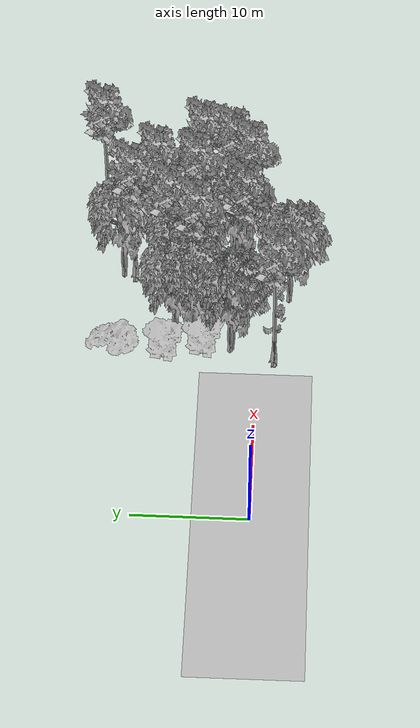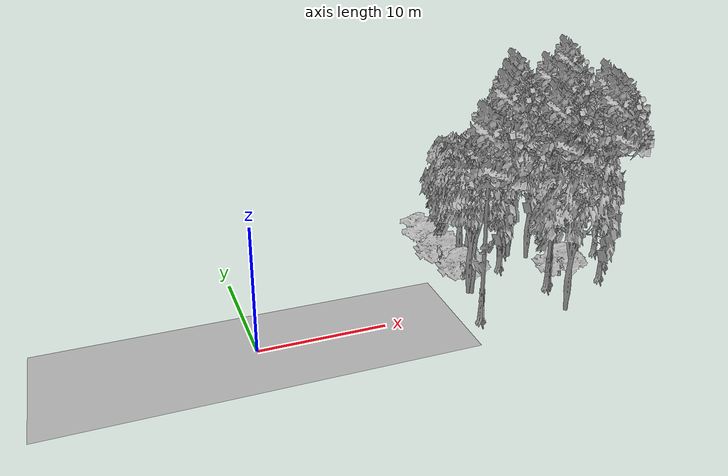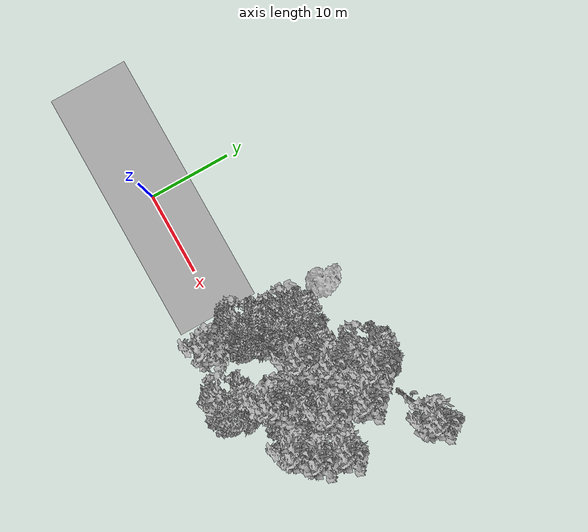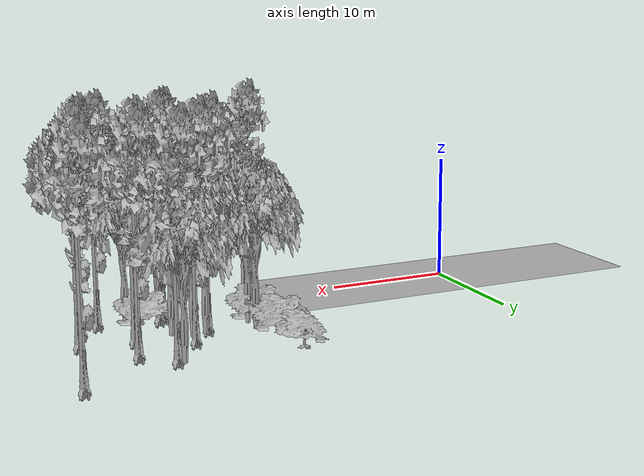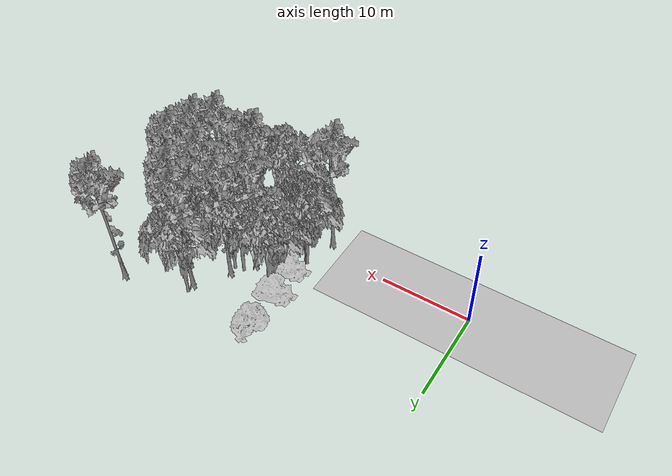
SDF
<sdf version="1.7">
 <world name="default">
  <model name="ground_plane">
   <static>1</static>
   <link name="link">
    <collision name="collision">
     <pose>-50 0 0 0 -0 0</pose>
     <geometry><plane><normal>0 0 1</normal><size>100 100</size></plane></geometry>
     <surface><contact><ode><min_depth>0.01</min_depth><max_vel>0</max_vel></ode></contact></surface>
    </collision>
    <visual name="grass">
     <cast_shadows>0</cast_shadows>
     <geometry>
      <mesh>
       <scale>0.5814285714285714 0.18142857142857144 0.1</scale>
       <uri>file://grass_plane/meshes/grass_plane.dae</uri>
      </mesh>
     </geometry>
    </visual>
   </link>
  </model>
  <model name="Tree 22">
   <static>1</static>
   <pose>24.124767231465142 -2.712410142354857 0 1.57079 -0 0</pose>
   <link name="link">
    <collision name="collision">
     <geometry><mesh><scale>3.5 5 3.5</scale><uri>model://tree_2/meshes/tree_2.obj</uri></mesh></geometry>
    </collision>
    <visual name="visual">
     <geometry><mesh><scale>3.5 5 3.5</scale><uri>model://tree_2/meshes/tree_2.obj</uri></mesh></geometry>
    </visual>
   </link>
  </model>
  <model name="Tree 31">
   <static>1</static>
   <pose>25.302204731030642 1.6287127306009737 0 1.57079 -0 0</pose>
   <link name="link">
    <collision name="collision">
     <geometry><mesh><scale>3.5 5 3.5</scale><uri>model://tree_9/meshes/tree_9.obj</uri></mesh></geometry>
    </collision>
    <visual name="visual">
     <geometry><mesh><scale>3.5 5 3.5</scale><uri>model://tree_9/meshes/tree_9.obj</uri></mesh></geometry>
    </visual>
   </link>
  </model>
  <model name="Tree 40">
   <static>1</static>
   <pose>24.41098998959231 7.710292765850685 0 1.57079 -0 0</pose>
   <link name="link">
    <collision name="collision">
     <geometry><mesh><scale>3.5 5 3.5</scale><uri>model://tree_9/meshes/tree_9.obj</uri></mesh></geometry>
    </collision>
    <visual name="visual">
     <geometry><mesh><scale>3.5 5 3.5</scale><uri>model://tree_9/meshes/tree_9.obj</uri></mesh></geometry>
    </visual>
   </link>
  </model>
  <model name="Tree 86">
   <static>1</static>
   <pose>18.070330755792952 12.436816149634172 0 1.57079 -0 0</pose>
   <link name="link">
    <collision name="collision">
     <geometry><mesh><scale>4 2.5 4</scale><uri>model://tree_1/meshes/tree_1.obj</uri></mesh></geometry>
    </collision>
    <visual name="visual">
     <geometry><mesh><scale>4 2.5 4</scale><uri>model://tree_1/meshes/tree_1.obj</uri></mesh></geometry>
    </visual>
   </link>
  </model>
  <model name="Tree 90">
   <static>1</static>
   <pose>23.28137012521441 6.695949290518087 0 1.57079 -0 0</pose>
   <link name="link">
    <collision name="collision">
     <geometry><mesh><scale>3.5 5 3.5</scale><uri>model://tree_2/meshes/tree_2.obj</uri></mesh></geometry>
    </collision>
    <visual name="visual">
     <geometry><mesh><scale>3.5 5 3.5</scale><uri>model://tree_2/meshes/tree_2.obj</uri></mesh></geometry>
    </visual>
   </link>
  </model>
  <model name="Tree 99">
   <static>1</static>
   <pose>28.303439166068486 5.708330517660507 0 1.57079 -0 0</pose>
   <link name="link">
    <collision name="collision">
     <geometry><mesh><scale>3.5 5 3.5</scale><uri>model://tree_9/meshes/tree_9.obj</uri></mesh></geometry>
    </collision>
    <visual name="visual">
     <geometry><mesh><scale>3.5 5 3.5</scale><uri>model://tree_9/meshes/tree_9.obj</uri></mesh></geometry>
    </visual>
   </link>
  </model>
  <model name="Tree 107">
   <static>1</static>
   <pose>24.87288250637603 1.1864837654046028 0 1.57079 -0 0</pose>
   <link name="link">
    <collision name="collision">
     <geometry><mesh><scale>3.5 5 3.5</scale><uri>model://tree_9/meshes/tree_9.obj</uri></mesh></geometry>
    </collision>
    <visual name="visual">
     <geometry><mesh><scale>3.5 5 3.5</scale><uri>model://tree_9/meshes/tree_9.obj</uri></mesh></geometry>
    </visual>
   </link>
  </model>
  <model name="Tree 109">
   <static>1</static>
   <pose>25.61074159423798 6.030777838290579 0 1.57079 -0 0</pose>
   <link name="link">
    <collision name="collision">
     <geometry><mesh><scale>3.5 5 3.5</scale><uri>model://tree_2/meshes/tree_2.obj</uri></mesh></geometry>
    </collision>
    <visual name="visual">
     <geometry><mesh><scale>3.5 5 3.5</scale><uri>model://tree_2/meshes/tree_2.obj</uri></mesh></geometry>
    </visual>
   </link>
  </model>
  <model name="Tree 126">
   <static>1</static>
   <pose>24.295262576106452 6.907972199948176 0 1.57079 -0 0</pose>
   <link name="link">
    <collision name="collision">
     <geometry><mesh><scale>3.5 5 3.5</scale><uri>model://tree_2/meshes/tree_2.obj</uri></mesh></geometry>
    </collision>
    <visual name="visual">
     <geometry><mesh><scale>3.5 5 3.5</scale><uri>model://tree_2/meshes/tree_2.obj</uri></mesh></geometry>
    </visual>
   </link>
  </model>
  <model name="Tree 127">
   <static>1</static>
   <pose>22.732095058991206 5.4433462175345255 0 1.57079 -0 0</pose>
   <link name="link">
    <collision name="collision">
     <geometry><mesh><scale>3.5 5 3.5</scale><uri>model://tree_9/meshes/tree_9.obj</uri></mesh></geometry>
    </collision>
    <visual name="visual">
     <geometry><mesh><scale>3.5 5 3.5</scale><uri>model://tree_9/meshes/tree_9.obj</uri></mesh></geometry>
    </visual>
   </link>
  </model>
  <model name="Tree 137">
   <static>1</static>
   <pose>26.516950198048235 12.065765075790157 0 1.57079 -0 0</pose>
   <link name="link">
    <collision name="collision">
     <geometry><mesh><scale>3.5 5 3.5</scale><uri>model://tree_2/meshes/tree_2.obj</uri></mesh></geometry>
    </collision>
    <visual name="visual">
     <geometry><mesh><scale>3.5 5 3.5</scale><uri>model://tree_2/meshes/tree_2.obj</uri></mesh></geometry>
    </visual>
   </link>
  </model>
  <model name="Tree 139">
   <static>1</static>
   <pose>28.923988247250605 9.044644478138718 0 1.57079 -0 0</pose>
   <link name="link">
    <collision name="collision">
     <geometry><mesh><scale>3.5 5 3.5</scale><uri>model://tree_9/meshes/tree_9.obj</uri></mesh></geometry>
    </collision>
    <visual name="visual">
     <geometry><mesh><scale>3.5 5 3.5</scale><uri>model://tree_9/meshes/tree_9.obj</uri></mesh></geometry>
    </visual>
   </link>
  </model>
  <model name="Tree 140">
   <static>1</static>
   <pose>18.34283799432481 2.1671144841896357 0 1.57079 -0 0</pose>
   <link name="link">
    <collision name="collision">
     <geometry><mesh><scale>3.5 5 3.5</scale><uri>model://tree_2/meshes/tree_2.obj</uri></mesh></geometry>
    </collision>
    <visual name="visual">
     <geometry><mesh><scale>3.5 5 3.5</scale><uri>model://tree_2/meshes/tree_2.obj</uri></mesh></geometry>
    </visual>
   </link>
  </model>
  <model name="Tree 145">
   <static>1</static>
   <pose>29.844340285908928 0.9494762816269038 0 1.57079 -0 0</pose>
   <link name="link">
    <collision name="collision">
     <geometry><mesh><scale>3.5 5 3.5</scale><uri>model://tree_9/meshes/tree_9.obj</uri></mesh></geometry>
    </collision>
    <visual name="visual">
     <geometry><mesh><scale>3.5 5 3.5</scale><uri>model://tree_9/meshes/tree_9.obj</uri></mesh></geometry>
    </visual>
   </link>
  </model>
  <model name="Tree 146">
   <static>1</static>
   <pose>18.853500563795677 4.541644960342655 0 1.57079 -0 0</pose>
   <link name="link">
    <collision name="collision">
     <geometry><mesh><scale>3 2 3</scale><uri>model://tree_3/meshes/tree_3.obj</uri></mesh></geometry>
    </collision>
    <visual name="visual">
     <geometry><mesh><scale>3 2 3</scale><uri>model://tree_3/meshes/tree_3.obj</uri></mesh></geometry>
    </visual>
   </link>
  </model>
  <model name="Tree 154">
   <static>1</static>
   <pose>31.388281273544152 2.52520594038225 0 1.57079 -0 0</pose>
   <link name="link">
    <collision name="collision">
     <geometry><mesh><scale>3.5 5 3.5</scale><uri>model://tree_9/meshes/tree_9.obj</uri></mesh></geometry>
    </collision>
    <visual name="visual">
     <geometry><mesh><scale>3.5 5 3.5</scale><uri>model://tree_9/meshes/tree_9.obj</uri></mesh></geometry>
    </visual>
   </link>
  </model>
  <model name="Tree 155">
   <static>1</static>
   <pose>32.168289917775596 5.144744212525893 0 1.57079 -0 0</pose>
   <link name="link">
    <collision name="collision">
     <geometry><mesh><scale>3.5 5 3.5</scale><uri>model://tree_9/meshes/tree_9.obj</uri></mesh></geometry>
    </collision>
    <visual name="visual">
     <geometry><mesh><scale>3.5 5 3.5</scale><uri>model://tree_9/meshes/tree_9.obj</uri></mesh></geometry>
    </visual>
   </link>
  </model>
  <model name="Tree 163">
   <static>1</static>
   <pose>17.36079705153452 -1.5307296778393322 0 1.57079 -0 0</pose>
   <link name="link">
    <collision name="collision">
     <geometry><mesh><scale>3.5 5 3.5</scale><uri>model://tree_9/meshes/tree_9.obj</uri></mesh></geometry>
    </collision>
    <visual name="visual">
     <geometry><mesh><scale>3.5 5 3.5</scale><uri>model://tree_9/meshes/tree_9.obj</uri></mesh></geometry>
    </visual>
   </link>
  </model>
  <model name="Tree 181">
   <static>1</static>
   <pose>27.986455151013956 2.1907345275298162 0 1.57079 -0 0</pose>
   <link name="link">
    <collision name="collision">
     <geometry><mesh><scale>3.5 5 3.5</scale><uri>model://tree_2/meshes/tree_2.obj</uri></mesh></geometry>
    </collision>
    <visual name="visual">
     <geometry><mesh><scale>3.5 5 3.5</scale><uri>model://tree_2/meshes/tree_2.obj</uri></mesh></geometry>
    </visual>
   </link>
  </model>
  <model name="Tree 193">
   <static>1</static>
   <pose>18.092398054460944 2.30578993496502 0 1.57079 -0 0</pose>
   <link name="link">
    <collision name="collision">
     <geometry><mesh><scale>3.5 5 3.5</scale><uri>model://tree_2/meshes/tree_2.obj</uri></mesh></geometry>
    </collision>
    <visual name="visual">
     <geometry><mesh><scale>3.5 5 3.5</scale><uri>model://tree_2/meshes/tree_2.obj</uri></mesh></geometry>
    </visual>
   </link>
  </model>
  <model name="Tree 212">
   <static>1</static>
   <pose>26.78936162876711 11.09233417470034 0 1.57079 -0 0</pose>
   <link name="link">
    <collision name="collision">
     <geometry><mesh><scale>3.5 5 3.5</scale><uri>model://tree_9/meshes/tree_9.obj</uri></mesh></geometry>
    </collision>
    <visual name="visual">
     <geometry><mesh><scale>3.5 5 3.5</scale><uri>model://tree_9/meshes/tree_9.obj</uri></mesh></geometry>
    </visual>
   </link>
  </model>
  <model name="Tree 233">
   <static>1</static>
   <pose>26.851427633419533 2.3650688400502347 0 1.57079 -0 0</pose>
   <link name="link">
    <collision name="collision">
     <geometry><mesh><scale>3 2 3</scale><uri>model://tree_3/meshes/tree_3.obj</uri></mesh></geometry>
    </collision>
    <visual name="visual">
     <geometry><mesh><scale>3 2 3</scale><uri>model://tree_3/meshes/tree_3.obj</uri></mesh></geometry>
    </visual>
   </link>
  </model>
  <model name="Tree 243">
   <static>1</static>
   <pose>19.576084132768955 7.150280583680271 0 1.57079 -0 0</pose>
   <link name="link">
    <collision name="collision">
     <geometry><mesh><scale>3.5 5 3.5</scale><uri>model://tree_2/meshes/tree_2.obj</uri></mesh></geometry>
    </collision>
    <visual name="visual">
     <geometry><mesh><scale>3.5 5 3.5</scale><uri>model://tree_2/meshes/tree_2.obj</uri></mesh></geometry>
    </visual>
   </link>
  </model>
  <model name="Tree 286">
   <static>1</static>
   <pose>18.281828017485026 7.928351143857931 0 1.57079 -0 0</pose>
   <link name="link">
    <collision name="collision">
     <geometry><mesh><scale>3 2 3</scale><uri>model://tree_3/meshes/tree_3.obj</uri></mesh></geometry>
    </collision>
    <visual name="visual">
     <geometry><mesh><scale>3 2 3</scale><uri>model://tree_3/meshes/tree_3.obj</uri></mesh></geometry>
    </visual>
   </link>
  </model>
  <model name="Tree 289">
   <static>1</static>
   <pose>19.595030164306394 5.560166896198091 0 1.57079 -0 0</pose>
   <link name="link">
    <collision name="collision">
     <geometry><mesh><scale>3.5 5 3.5</scale><uri>model://tree_2/meshes/tree_2.obj</uri></mesh></geometry>
    </collision>
    <visual name="visual">
     <geometry><mesh><scale>3.5 5 3.5</scale><uri>model://tree_2/meshes/tree_2.obj</uri></mesh></geometry>
    </visual>
   </link>
  </model>
  <model name="Tree 290">
   <static>1</static>
   <pose>33.773008590136925 13.948266992590717 0 1.57079 -0 0</pose>
   <link name="link">
    <collision name="collision">
     <geometry><mesh><scale>3.5 5 3.5</scale><uri>model://tree_9/meshes/tree_9.obj</uri></mesh></geometry>
    </collision>
    <visual name="visual">
     <geometry><mesh><scale>3.5 5 3.5</scale><uri>model://tree_9/meshes/tree_9.obj</uri></mesh></geometry>
    </visual>
   </link>
  </model>
 </world>
</sdf>
